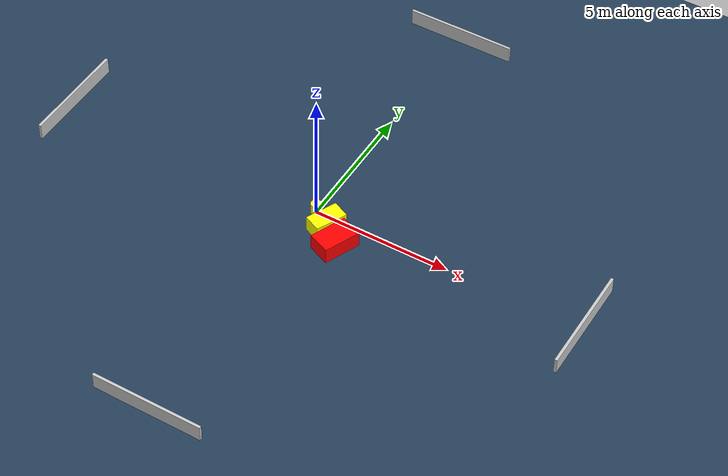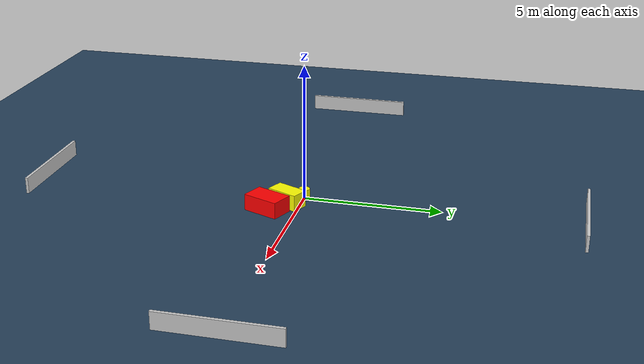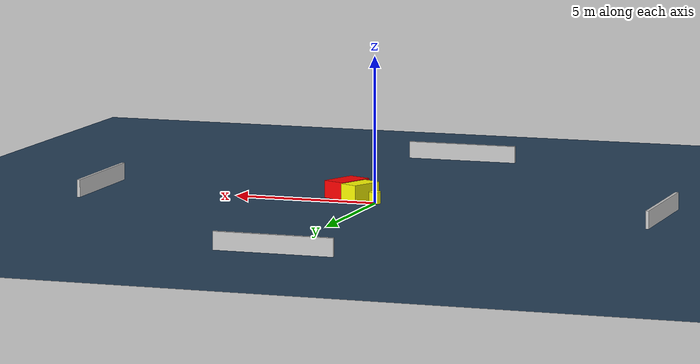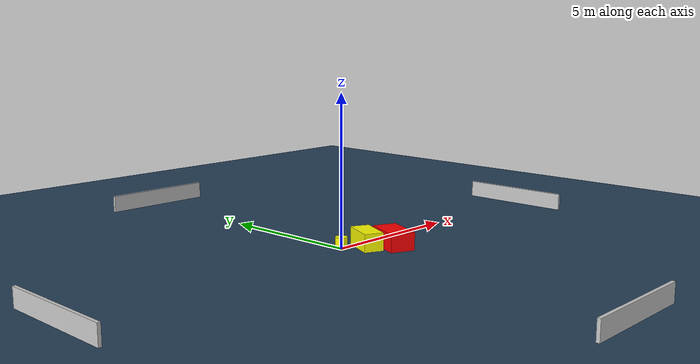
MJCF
<?xml version="1.0" ?>
<mujoco model="generated_environment">
  <option timestep="0.01" integrator="RK4" cone="elliptic"/>
  <default>
    <geom density="1"/>
  </default>
  <asset>
    <texture builtin="gradient" height="3072" name="skybox" rgb1="0.3 0.5 0.7" rgb2="0 0 0" type="skybox" width="512"/>
    <texture builtin="checker" height="300" name="groundplane" rgb1="0.2 0.3 0.4" rgb2="0.1 0.2 0.3" type="2d" width="300"/>
    <material name="groundplane" reflectance="0.2" texrepeat="5 5" texture="groundplane"/>
  </asset>
  <worldbody>
    <light dir="0 0 -1" directional="true" pos="0 0 1.5"/>
    <geom condim="3" friction="0.5 0.005 0.001" material="groundplane" name="floor" pos="0 0 0" size="0 0 0.05" type="plane"/>
    <body name="walls">
      <geom name="wall_1" condim="4" pos="-10.0 0.0 0.3" rgba="0.800000011920929 0.800000011920929 0.800000011920929 1.0" size="0.05 2.0 0.3" type="box"/>
      <geom name="wall_2" condim="4" pos="10.0 0.0 0.3" rgba="0.800000011920929 0.800000011920929 0.800000011920929 1.0" size="0.05 2.0 0.3" type="box"/>
      <geom name="wall_3" condim="4" pos="0.0 -10.0 0.3" rgba="0.800000011920929 0.800000011920929 0.800000011920929 1.0" size="2.0 0.05 0.3" type="box"/>
      <geom name="wall_4" condim="4" pos="0.0 10.0 0.3" rgba="0.800000011920929 0.800000011920929 0.800000011920929 1.0" size="2.0 0.05 0.3" type="box"/>
    </body>
    <body name="robot">
      <joint name="joint_x" type="slide" pos="0 0 0" axis="1 0 0"/>
      <joint name="joint_y" type="slide" pos="0 0 0" axis="0 1 0"/>
      <geom name="robot" type="cylinder" pos="0.0 0.0 0.2" size="0.2 0.2 0.0" mass="5.0" friction="1.0 0.005 0.0001" condim="4" rgba="1.0 1.0 0.0 1.0"/>
    </body>
    <body name="obstacle_1_movable">
      <geom name="obstacle_1_movable" condim="4" pos="0.6808557844090836 -0.46928186718064674 0.3" euler="0 0 155.34013775127326" friction="0.0 0.005 0.001" rgba="1.0 1.0 0.0 1.0" size="0.32328566888590216 0.5910910596664809 0.3" type="box" mass="0.1"/>
      <joint type="free"/>
    </body>
    <body name="obstacle_2_static">
      <geom name="obstacle_2_static" condim="4" pos="1.3472309780221146 -1.0256847154037743 0.3" euler="0 0 67.23157470103172" friction="0.0 0.005 0.001" rgba="1.0 0.0 0.0 1.0" size="0.6793704526336636 0.4196960741753557 0.3" type="box"/>
    </body>
  </worldbody>
  <actuator>
    <motor name="actuator_x" joint="joint_x" gear="1" ctrlrange="-1 1"/>
    <motor name="actuator_y" joint="joint_y" gear="1" ctrlrange="-1 1"/>
  </actuator>
</mujoco>
